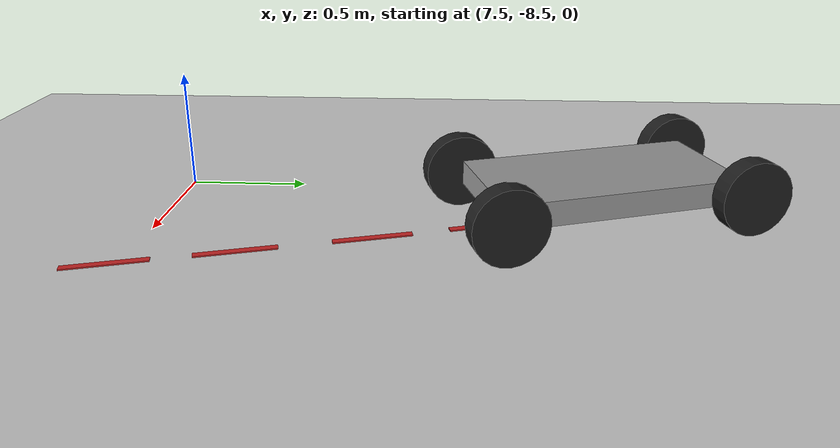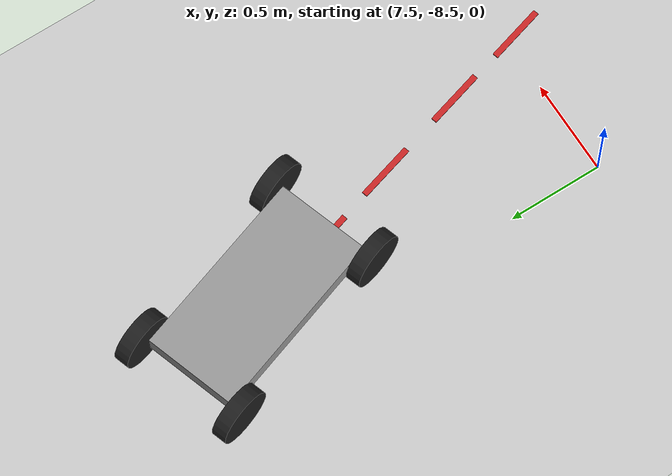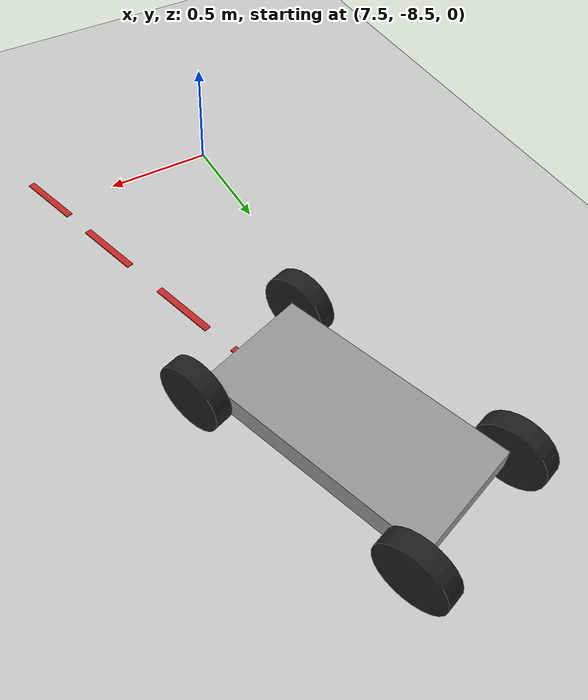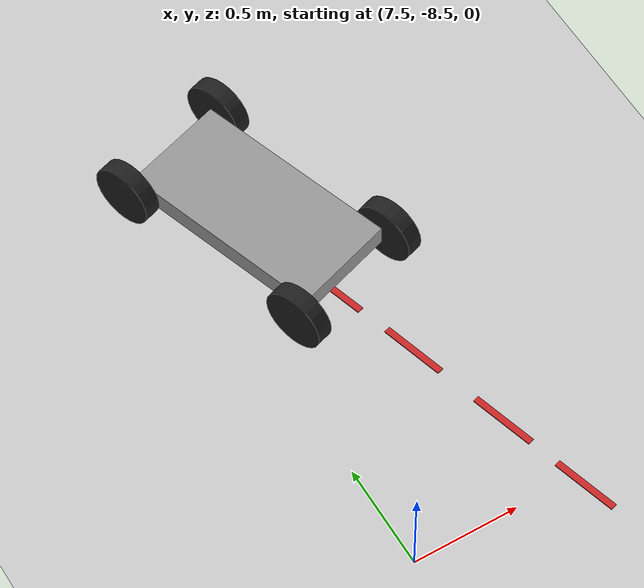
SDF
<sdf version="1.7">
 <world name="curve5">
  <model name="ground_plane">
   <static>1</static>
   <link name="link">
    <collision name="collision">
     <geometry><plane><normal>0 0 1</normal><size>100 100</size></plane></geometry>
     <surface><friction><ode><mu>100</mu><mu2>50</mu2></ode></friction></surface>
    </collision>
    <visual name="visual">
     <cast_shadows>0</cast_shadows>
     <geometry><plane><normal>0 0 1</normal><size>100 100</size></plane></geometry>
     <material>
      <script><uri>file://media/materials/scripts/gazebo.material</uri><name>Gazebo/Grey</name></script>
     </material>
    </visual>
   </link>
  </model>
  <model name="curveRoad_try4">
   <link name="link_clone_clone_0_clone_1_clone_1_clone_2_clone_4">
    <inertial>
     <mass>4.94957e-05</mass>
     <inertia>
      <ixx>4.15553e-09</ixx>
      <ixy>0</ixy>
      <ixz>0</ixz>
      <iyy>4.0181e-07</iyy>
      <iyz>0</iyz>
      <izz>4.05754e-07</izz>
     </inertia>
    </inertial>
    <pose>7.37807 -8.09124 0.000184 -1.9e-05 -5.8e-05 -1.27973</pose>
    <visual name="visual">
     <geometry><box><size>0.312076 0.031335 0.005062</size></box></geometry>
     <material>
      <script><name>Gazebo/Red</name><uri>file://media/materials/scripts/gazebo.material</uri></script>
      <shader type="pixel"><normal_map>__default__</normal_map></shader>
      <ambient>1 0 0 1</ambient>
      <diffuse>1 0 0 1</diffuse>
      <emissive>1 0 0 1</emissive>
      <specular>1 0 0 1</specular>
     </material>
    </visual>
    <collision name="collision">
     <geometry><box><size>0.312076 0.031335 0.005062</size></box></geometry>
     <surface>
      <friction>
       <ode><mu>1</mu><mu2>1</mu2><fdir1>0 0 0</fdir1><slip1>0</slip1><slip2>0</slip2></ode>
       <torsional>
        <coefficient>1</coefficient>
        <patch_radius>0</patch_radius>
        <surface_radius>0</surface_radius>
        <use_patch_radius>1</use_patch_radius>
        <ode><slip>0</slip></ode>
       </torsional>
      </friction>
      <bounce><restitution_coefficient>0</restitution_coefficient><threshold>1e+06</threshold></bounce>
      <contact>
       <collide_without_contact>0</collide_without_contact>
       <collide_without_contact_bitmask>1</collide_without_contact_bitmask>
       <collide_bitmask>1</collide_bitmask>
       <ode>
        <soft_cfm>0</soft_cfm>
        <soft_erp>0.2</soft_erp>
        <kp>1e+13</kp>
        <kd>1</kd>
        <max_vel>0.01</max_vel>
        <min_depth>0</min_depth>
       </ode>
       <bullet>
        <split_impulse>1</split_impulse>
        <split_impulse_penetration_threshold>-0.01</split_impulse_penetration_threshold>
        <soft_cfm>0</soft_cfm>
        <soft_erp>0.2</soft_erp>
        <kp>1e+13</kp>
        <kd>1</kd>
       </bullet>
      </contact>
     </surface>
    </collision>
   </link>
   <link name="link_clone_clone_0_clone_1_clone_1_clone_2_clone_5">
    <inertial>
     <mass>4.94957e-05</mass>
     <inertia>
      <ixx>4.15553e-09</ixx>
      <ixy>0</ixy>
      <ixz>0</ixz>
      <iyy>4.0181e-07</iyy>
      <iyz>0</iyz>
      <izz>4.05754e-07</izz>
     </inertia>
    </inertial>
    <pose>7.51193 -8.5341 0.000188 -1.8e-05 -5.8e-05 -1.29041</pose>
    <visual name="visual">
     <geometry><box><size>0.312076 0.031335 0.005062</size></box></geometry>
     <material>
      <script><name>Gazebo/Red</name><uri>file://media/materials/scripts/gazebo.material</uri></script>
      <shader type="pixel"><normal_map>__default__</normal_map></shader>
      <ambient>1 0 0 1</ambient>
      <diffuse>1 0 0 1</diffuse>
      <emissive>1 0 0 1</emissive>
      <specular>1 0 0 1</specular>
     </material>
    </visual>
    <collision name="collision">
     <geometry><box><size>0.312076 0.031335 0.005062</size></box></geometry>
     <surface>
      <friction>
       <ode><mu>1</mu><mu2>1</mu2><fdir1>0 0 0</fdir1><slip1>0</slip1><slip2>0</slip2></ode>
       <torsional>
        <coefficient>1</coefficient>
        <patch_radius>0</patch_radius>
        <surface_radius>0</surface_radius>
        <use_patch_radius>1</use_patch_radius>
        <ode><slip>0</slip></ode>
       </torsional>
      </friction>
      <bounce><restitution_coefficient>0</restitution_coefficient><threshold>1e+06</threshold></bounce>
      <contact>
       <collide_without_contact>0</collide_without_contact>
       <collide_without_contact_bitmask>1</collide_without_contact_bitmask>
       <collide_bitmask>1</collide_bitmask>
       <ode>
        <soft_cfm>0</soft_cfm>
        <soft_erp>0.2</soft_erp>
        <kp>1e+13</kp>
        <kd>1</kd>
        <max_vel>0.01</max_vel>
        <min_depth>0</min_depth>
       </ode>
       <bullet>
        <split_impulse>1</split_impulse>
        <split_impulse_penetration_threshold>-0.01</split_impulse_penetration_threshold>
        <soft_cfm>0</soft_cfm>
        <soft_erp>0.2</soft_erp>
        <kp>1e+13</kp>
        <kd>1</kd>
       </bullet>
      </contact>
     </surface>
    </collision>
   </link>
   <link name="link_clone_clone_0_clone_1_clone_1_clone_2_clone_6">
    <inertial>
     <mass>4.94957e-05</mass>
     <inertia>
      <ixx>4.15553e-09</ixx>
      <ixy>0</ixy>
      <ixz>0</ixz>
      <iyy>4.0181e-07</iyy>
      <iyz>0</iyz>
      <izz>4.05754e-07</izz>
     </inertia>
    </inertial>
    <pose>7.65342 -9.02931 0.000193 -1.8e-05 -5.8e-05 -1.29041</pose>
    <visual name="visual">
     <geometry><box><size>0.312076 0.031335 0.005062</size></box></geometry>
     <material>
      <script><name>Gazebo/Red</name><uri>file://media/materials/scripts/gazebo.material</uri></script>
      <shader type="pixel"><normal_map>__default__</normal_map></shader>
      <ambient>1 0 0 1</ambient>
      <diffuse>1 0 0 1</diffuse>
      <emissive>1 0 0 1</emissive>
      <specular>1 0 0 1</specular>
     </material>
    </visual>
    <collision name="collision">
     <geometry><box><size>0.312076 0.031335 0.005062</size></box></geometry>
     <surface>
      <friction>
       <ode><mu>1</mu><mu2>1</mu2><fdir1>0 0 0</fdir1><slip1>0</slip1><slip2>0</slip2></ode>
       <torsional>
        <coefficient>1</coefficient>
        <patch_radius>0</patch_radius>
        <surface_radius>0</surface_radius>
        <use_patch_radius>1</use_patch_radius>
        <ode><slip>0</slip></ode>
       </torsional>
      </friction>
      <bounce><restitution_coefficient>0</restitution_coefficient><threshold>1e+06</threshold></bounce>
      <contact>
       <collide_without_contact>0</collide_without_contact>
       <collide_without_contact_bitmask>1</collide_without_contact_bitmask>
       <collide_bitmask>1</collide_bitmask>
       <ode>
        <soft_cfm>0</soft_cfm>
        <soft_erp>0.2</soft_erp>
        <kp>1e+13</kp>
        <kd>1</kd>
        <max_vel>0.01</max_vel>
        <min_depth>0</min_depth>
       </ode>
       <bullet>
        <split_impulse>1</split_impulse>
        <split_impulse_penetration_threshold>-0.01</split_impulse_penetration_threshold>
        <soft_cfm>0</soft_cfm>
        <soft_erp>0.2</soft_erp>
        <kp>1e+13</kp>
        <kd>1</kd>
       </bullet>
      </contact>
     </surface>
    </collision>
   </link>
   <link name="link_clone_clone_0_clone_1_clone_1_clone_2_clone_7">
    <inertial>
     <mass>4.94957e-05</mass>
     <inertia>
      <ixx>4.15553e-09</ixx>
      <ixy>0</ixy>
      <ixz>0</ixz>
      <iyy>4.0181e-07</iyy>
      <iyz>0</iyz>
      <izz>4.05754e-07</izz>
     </inertia>
    </inertial>
    <pose>7.77698 -9.47288 0.000198 -1.8e-05 -5.8e-05 -1.29041</pose>
    <visual name="visual">
     <geometry><box><size>0.312076 0.031335 0.005062</size></box></geometry>
     <material>
      <script><name>Gazebo/Red</name><uri>file://media/materials/scripts/gazebo.material</uri></script>
      <shader type="pixel"><normal_map>__default__</normal_map></shader>
      <ambient>1 0 0 1</ambient>
      <diffuse>1 0 0 1</diffuse>
      <emissive>1 0 0 1</emissive>
      <specular>1 0 0 1</specular>
     </material>
    </visual>
    <collision name="collision">
     <geometry><box><size>0.312076 0.031335 0.005062</size></box></geometry>
     <surface>
      <friction>
       <ode><mu>1</mu><mu2>1</mu2><fdir1>0 0 0</fdir1><slip1>0</slip1><slip2>0</slip2></ode>
       <torsional>
        <coefficient>1</coefficient>
        <patch_radius>0</patch_radius>
        <surface_radius>0</surface_radius>
        <use_patch_radius>1</use_patch_radius>
        <ode><slip>0</slip></ode>
       </torsional>
      </friction>
      <bounce><restitution_coefficient>0</restitution_coefficient><threshold>1e+06</threshold></bounce>
      <contact>
       <collide_without_contact>0</collide_without_contact>
       <collide_without_contact_bitmask>1</collide_without_contact_bitmask>
       <collide_bitmask>1</collide_bitmask>
       <ode>
        <soft_cfm>0</soft_cfm>
        <soft_erp>0.2</soft_erp>
        <kp>1e+13</kp>
        <kd>1</kd>
        <max_vel>0.01</max_vel>
        <min_depth>0</min_depth>
       </ode>
       <bullet>
        <split_impulse>1</split_impulse>
        <split_impulse_penetration_threshold>-0.01</split_impulse_penetration_threshold>
        <soft_cfm>0</soft_cfm>
        <soft_erp>0.2</soft_erp>
        <kp>1e+13</kp>
        <kd>1</kd>
       </bullet>
      </contact>
     </surface>
    </collision>
   </link>
   <static>1</static>
   <pose>0.52678 0.915402 5e-06 1e-05 -0 0</pose>
  </model>
  <model name="cart_rigid_suspension">
   <link name="chassis">
    <pose>-0 0 0.15 0 -0 0</pose>
    <inertial>
     <pose>0.1 0 0 0 -0 0</pose>
     <mass>10</mass>
     <inertia>
      <ixx>0.216667</ixx>
      <iyy>0.841667</iyy>
      <izz>1.04167</izz>
      <ixy>0</ixy>
      <ixz>0</ixz>
      <iyz>0</iyz>
     </inertia>
    </inertial>
    <visual name="visual">
     <geometry><box><size>1 0.5 0.1</size></box></geometry>
     <material>
      <script><uri>file://media/materials/scripts/gazebo.material</uri><name>Gazebo/Grey</name></script>
      <shader type="pixel"/>
     </material>
    </visual>
    <collision name="collision">
     <geometry><box><size>1 0.5 0.1</size></box></geometry>
     <surface>
      <friction>
       <ode><mu>1</mu><mu2>1</mu2><fdir1>0 0 0</fdir1><slip1>0</slip1><slip2>0</slip2></ode>
       <torsional>
        <coefficient>1</coefficient>
        <patch_radius>0</patch_radius>
        <surface_radius>0</surface_radius>
        <use_patch_radius>1</use_patch_radius>
        <ode><slip>0</slip></ode>
       </torsional>
      </friction>
      <bounce><restitution_coefficient>0</restitution_coefficient><threshold>1e+06</threshold></bounce>
      <contact>
       <collide_without_contact>0</collide_without_contact>
       <collide_without_contact_bitmask>1</collide_without_contact_bitmask>
       <collide_bitmask>1</collide_bitmask>
       <ode>
        <soft_cfm>0</soft_cfm>
        <soft_erp>0.2</soft_erp>
        <kp>1e+13</kp>
        <kd>1</kd>
        <max_vel>0.01</max_vel>
        <min_depth>0</min_depth>
       </ode>
       <bullet>
        <split_impulse>1</split_impulse>
        <split_impulse_penetration_threshold>-0.01</split_impulse_penetration_threshold>
        <soft_cfm>0</soft_cfm>
        <soft_erp>0.2</soft_erp>
        <kp>1e+13</kp>
        <kd>1</kd>
       </bullet>
      </contact>
     </surface>
    </collision>
   </link>
   <link name="wheel_front_left">
    <pose>0.5 0.298 0.15 -1.5708 0 0</pose>
    <inertial>
     <mass>0.5</mass>
     <inertia>
      <ixx>0.00307917</ixx>
      <iyy>0.00307917</iyy>
      <izz>0.005625</izz>
      <ixy>0</ixy>
      <ixz>0</ixz>
      <iyz>0</iyz>
     </inertia>
    </inertial>
    <visual name="visual">
     <geometry><cylinder><radius>0.15</radius><length>0.08</length></cylinder></geometry>
     <material>
      <script><uri>file://media/materials/scripts/gazebo.material</uri><name>Gazebo/Black</name></script>
      <shader type="pixel"/>
     </material>
    </visual>
    <collision name="collision">
     <geometry><cylinder><radius>0.15</radius><length>0.08</length></cylinder></geometry>
     <surface>
      <friction>
       <ode><mu>1</mu><mu2>1</mu2><fdir1>0 0 0</fdir1><slip1>0</slip1><slip2>0</slip2></ode>
       <torsional>
        <coefficient>1</coefficient>
        <patch_radius>0</patch_radius>
        <surface_radius>0</surface_radius>
        <use_patch_radius>1</use_patch_radius>
        <ode><slip>0</slip></ode>
       </torsional>
      </friction>
      <bounce><restitution_coefficient>0</restitution_coefficient><threshold>1e+06</threshold></bounce>
      <contact>
       <collide_without_contact>0</collide_without_contact>
       <collide_without_contact_bitmask>1</collide_without_contact_bitmask>
       <collide_bitmask>1</collide_bitmask>
       <ode>
        <soft_cfm>0</soft_cfm>
        <soft_erp>0.2</soft_erp>
        <kp>1e+13</kp>
        <kd>1</kd>
        <max_vel>0.01</max_vel>
        <min_depth>0</min_depth>
       </ode>
       <bullet>
        <split_impulse>1</split_impulse>
        <split_impulse_penetration_threshold>-0.01</split_impulse_penetration_threshold>
        <soft_cfm>0</soft_cfm>
        <soft_erp>0.2</soft_erp>
        <kp>1e+13</kp>
        <kd>1</kd>
       </bullet>
      </contact>
     </surface>
    </collision>
   </link>
   <link name="wheel_front_right">
    <pose>0.5 -0.298 0.15 -1.5708 0 0</pose>
    <inertial>
     <mass>0.5</mass>
     <inertia>
      <ixx>0.00307917</ixx>
      <iyy>0.00307917</iyy>
      <izz>0.005625</izz>
      <ixy>0</ixy>
      <ixz>0</ixz>
      <iyz>0</iyz>
     </inertia>
    </inertial>
    <visual name="visual">
     <geometry><cylinder><radius>0.15</radius><length>0.08</length></cylinder></geometry>
     <material>
      <script><uri>file://media/materials/scripts/gazebo.material</uri><name>Gazebo/Black</name></script>
      <shader type="pixel"/>
     </material>
    </visual>
    <collision name="collision">
     <geometry><cylinder><radius>0.15</radius><length>0.08</length></cylinder></geometry>
     <surface>
      <friction>
       <ode><mu>1</mu><mu2>1</mu2><fdir1>0 0 0</fdir1><slip1>0</slip1><slip2>0</slip2></ode>
       <torsional>
        <coefficient>1</coefficient>
        <patch_radius>0</patch_radius>
        <surface_radius>0</surface_radius>
        <use_patch_radius>1</use_patch_radius>
        <ode><slip>0</slip></ode>
       </torsional>
      </friction>
      <bounce><restitution_coefficient>0</restitution_coefficient><threshold>1e+06</threshold></bounce>
      <contact>
       <collide_without_contact>0</collide_without_contact>
       <collide_without_contact_bitmask>1</collide_without_contact_bitmask>
       <collide_bitmask>1</collide_bitmask>
       <ode>
        <soft_cfm>0</soft_cfm>
        <soft_erp>0.2</soft_erp>
        <kp>1e+13</kp>
        <kd>1</kd>
        <max_vel>0.01</max_vel>
        <min_depth>0</min_depth>
       </ode>
       <bullet>
        <split_impulse>1</split_impulse>
        <split_impulse_penetration_threshold>-0.01</split_impulse_penetration_threshold>
        <soft_cfm>0</soft_cfm>
        <soft_erp>0.2</soft_erp>
        <kp>1e+13</kp>
        <kd>1</kd>
       </bullet>
      </contact>
     </surface>
    </collision>
   </link>
   <link name="wheel_rear_left">
    <pose>-0.5 0.298 0.15 -1.5708 0 0</pose>
    <inertial>
     <mass>0.5</mass>
     <inertia>
      <ixx>0.00307917</ixx>
      <iyy>0.00307917</iyy>
      <izz>0.005625</izz>
      <ixy>0</ixy>
      <ixz>0</ixz>
      <iyz>0</iyz>
     </inertia>
    </inertial>
    <visual name="visual">
     <geometry><cylinder><radius>0.15</radius><length>0.08</length></cylinder></geometry>
     <material>
      <script><uri>file://media/materials/scripts/gazebo.material</uri><name>Gazebo/Black</name></script>
      <shader type="pixel"/>
     </material>
    </visual>
    <collision name="collision">
     <geometry><cylinder><radius>0.15</radius><length>0.08</length></cylinder></geometry>
     <surface>
      <friction>
       <ode><mu>1</mu><mu2>1</mu2><fdir1>0 0 0</fdir1><slip1>0</slip1><slip2>0</slip2></ode>
       <torsional>
        <coefficient>1</coefficient>
        <patch_radius>0</patch_radius>
        <surface_radius>0</surface_radius>
        <use_patch_radius>1</use_patch_radius>
        <ode><slip>0</slip></ode>
       </torsional>
      </friction>
      <bounce><restitution_coefficient>0</restitution_coefficient><threshold>1e+06</threshold></bounce>
      <contact>
       <collide_without_contact>0</collide_without_contact>
       <collide_without_contact_bitmask>1</collide_without_contact_bitmask>
       <collide_bitmask>1</collide_bitmask>
       <ode>
        <soft_cfm>0</soft_cfm>
        <soft_erp>0.2</soft_erp>
        <kp>1e+13</kp>
        <kd>1</kd>
        <max_vel>0.01</max_vel>
        <min_depth>0</min_depth>
       </ode>
       <bullet>
        <split_impulse>1</split_impulse>
        <split_impulse_penetration_threshold>-0.01</split_impulse_penetration_threshold>
        <soft_cfm>0</soft_cfm>
        <soft_erp>0.2</soft_erp>
        <kp>1e+13</kp>
        <kd>1</kd>
       </bullet>
      </contact>
     </surface>
    </collision>
   </link>
   <link name="wheel_rear_right">
    <pose>-0.5 -0.298 0.15 -1.5708 0 0</pose>
    <inertial>
     <mass>0.5</mass>
     <inertia>
      <ixx>0.00307917</ixx>
      <iyy>0.00307917</iyy>
      <izz>0.005625</izz>
      <ixy>0</ixy>
      <ixz>0</ixz>
      <iyz>0</iyz>
     </inertia>
    </inertial>
    <visual name="visual">
     <geometry><cylinder><radius>0.15</radius><length>0.08</length></cylinder></geometry>
     <material>
      <script><uri>file://media/materials/scripts/gazebo.material</uri><name>Gazebo/Black</name></script>
      <shader type="pixel"/>
     </material>
    </visual>
    <collision name="collision">
     <geometry><cylinder><radius>0.15</radius><length>0.08</length></cylinder></geometry>
     <surface>
      <friction>
       <ode><mu>1</mu><mu2>1</mu2><fdir1>0 0 0</fdir1><slip1>0</slip1><slip2>0</slip2></ode>
       <torsional>
        <coefficient>1</coefficient>
        <patch_radius>0</patch_radius>
        <surface_radius>0</surface_radius>
        <use_patch_radius>1</use_patch_radius>
        <ode><slip>0</slip></ode>
       </torsional>
      </friction>
      <bounce><restitution_coefficient>0</restitution_coefficient><threshold>1e+06</threshold></bounce>
      <contact>
       <collide_without_contact>0</collide_without_contact>
       <collide_without_contact_bitmask>1</collide_without_contact_bitmask>
       <collide_bitmask>1</collide_bitmask>
       <ode>
        <soft_cfm>0</soft_cfm>
        <soft_erp>0.2</soft_erp>
        <kp>1e+13</kp>
        <kd>1</kd>
        <max_vel>0.01</max_vel>
        <min_depth>0</min_depth>
       </ode>
       <bullet>
        <split_impulse>1</split_impulse>
        <split_impulse_penetration_threshold>-0.01</split_impulse_penetration_threshold>
        <soft_cfm>0</soft_cfm>
        <soft_erp>0.2</soft_erp>
        <kp>1e+13</kp>
        <kd>1</kd>
       </bullet>
      </contact>
     </surface>
    </collision>
   </link>
   <joint name="wheel_front_left_spin" type="revolute">
    <parent>chassis</parent>
    <child>wheel_front_left</child>
    <axis>
     <xyz>0 0 1</xyz>
     <limit><lower>-1e+16</lower><upper>1e+16</upper><effort>-1</effort><velocity>-1</velocity></limit>
     <dynamics>
      <spring_reference>0</spring_reference>
      <spring_stiffness>0</spring_stiffness>
      <damping>0</damping>
      <friction>0</friction>
     </dynamics>
    </axis>
    <physics>
     <ode><limit><cfm>0</cfm><erp>0.2</erp></limit><suspension><cfm>0</cfm><erp>0.2</erp></suspension></ode>
    </physics>
   </joint>
   <joint name="wheel_front_right_spin" type="revolute">
    <parent>chassis</parent>
    <child>wheel_front_right</child>
    <axis>
     <xyz>0 0 1</xyz>
     <limit><lower>-1e+16</lower><upper>1e+16</upper><effort>-1</effort><velocity>-1</velocity></limit>
     <dynamics>
      <spring_reference>0</spring_reference>
      <spring_stiffness>0</spring_stiffness>
      <damping>0</damping>
      <friction>0</friction>
     </dynamics>
    </axis>
    <physics>
     <ode><limit><cfm>0</cfm><erp>0.2</erp></limit><suspension><cfm>0</cfm><erp>0.2</erp></suspension></ode>
    </physics>
   </joint>
   <joint name="wheel_rear_left_spin" type="revolute">
    <parent>chassis</parent>
    <child>wheel_rear_left</child>
    <axis>
     <xyz>0 0 1</xyz>
     <limit><lower>-1e+16</lower><upper>1e+16</upper><effort>-1</effort><velocity>-1</velocity></limit>
     <dynamics>
      <spring_reference>0</spring_reference>
      <spring_stiffness>0</spring_stiffness>
      <damping>0</damping>
      <friction>0</friction>
     </dynamics>
    </axis>
    <physics>
     <ode><limit><cfm>0</cfm><erp>0.2</erp></limit><suspension><cfm>0</cfm><erp>0.2</erp></suspension></ode>
    </physics>
   </joint>
   <joint name="wheel_rear_right_spin" type="revolute">
    <parent>chassis</parent>
    <child>wheel_rear_right</child>
    <axis>
     <xyz>0 0 1</xyz>
     <limit><lower>-1e+16</lower><upper>1e+16</upper><effort>-1</effort><velocity>-1</velocity></limit>
     <dynamics>
      <spring_reference>0</spring_reference>
      <spring_stiffness>0</spring_stiffness>
      <damping>0</damping>
      <friction>0</friction>
     </dynamics>
    </axis>
    <physics>
     <ode><limit><cfm>0</cfm><erp>0.2</erp></limit><suspension><cfm>0</cfm><erp>0.2</erp></suspension></ode>
    </physics>
   </joint>
   <static>0</static>
   <pose>7.78358 -6.72541 1e-06 -1e-05 6e-06 -1.24955</pose>
  </model>
 </world>
</sdf>
